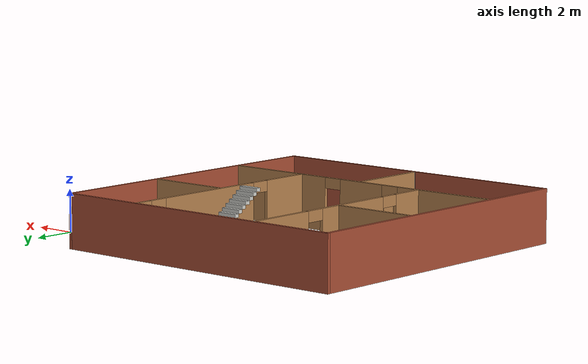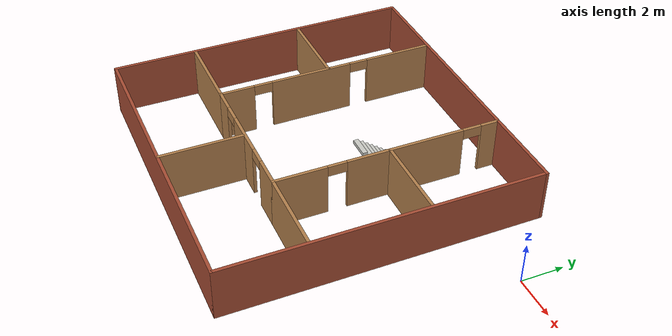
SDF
<?xml version='1.0'?>
<sdf version='1.6'>
  <model name='my_building'>
    <pose>-8.98206 -4.61363 0 0 -0 0</pose>
    <link name='Stairs_0'>
      <visual name='Stairs_0_Visual_0'>
        <pose>1.21745 4.206 0.083333 0 -0 0</pose>
        <geometry>
          <box>
            <size>1 0.233333 0.166667</size>
          </box>
        </geometry>
        <material>
          <script>
            <uri>file://media/materials/scripts/gazebo.material</uri>
            <name>Gazebo/CeilingTiled</name>
          </script>
          <ambient>1 1 1 1</ambient>
        </material>
        <meta>
          <layer>0</layer>
        </meta>
      </visual>
      <collision name='Stairs_0_Collision_0'>
        <geometry>
          <box>
            <size>1 0.233333 0.166667</size>
          </box>
        </geometry>
        <pose>1.21745 4.206 0.083333 0 -0 0</pose>
      </collision>
      <visual name='Stairs_0_Visual_1'>
        <pose>1.21745 3.97267 0.25 0 -0 0</pose>
        <geometry>
          <box>
            <size>1 0.233333 0.166667</size>
          </box>
        </geometry>
        <material>
          <script>
            <uri>file://media/materials/scripts/gazebo.material</uri>
            <name>Gazebo/CeilingTiled</name>
          </script>
          <ambient>1 1 1 1</ambient>
        </material>
        <meta>
          <layer>0</layer>
        </meta>
      </visual>
      <collision name='Stairs_0_Collision_1'>
        <geometry>
          <box>
            <size>1 0.233333 0.166667</size>
          </box>
        </geometry>
        <pose>1.21745 3.97267 0.25 0 -0 0</pose>
      </collision>
      <visual name='Stairs_0_Visual_2'>
        <pose>1.21745 3.73934 0.416667 0 -0 0</pose>
        <geometry>
          <box>
            <size>1 0.233333 0.166667</size>
          </box>
        </geometry>
        <material>
          <script>
            <uri>file://media/materials/scripts/gazebo.material</uri>
            <name>Gazebo/CeilingTiled</name>
          </script>
          <ambient>1 1 1 1</ambient>
        </material>
        <meta>
          <layer>0</layer>
        </meta>
      </visual>
      <collision name='Stairs_0_Collision_2'>
        <geometry>
          <box>
            <size>1 0.233333 0.166667</size>
          </box>
        </geometry>
        <pose>1.21745 3.73934 0.416667 0 -0 0</pose>
      </collision>
      <visual name='Stairs_0_Visual_3'>
        <pose>1.21745 3.506 0.583333 0 -0 0</pose>
        <geometry>
          <box>
            <size>1 0.233333 0.166667</size>
          </box>
        </geometry>
        <material>
          <script>
            <uri>file://media/materials/scripts/gazebo.material</uri>
            <name>Gazebo/CeilingTiled</name>
          </script>
          <ambient>1 1 1 1</ambient>
        </material>
        <meta>
          <layer>0</layer>
        </meta>
      </visual>
      <collision name='Stairs_0_Collision_3'>
        <geometry>
          <box>
            <size>1 0.233333 0.166667</size>
          </box>
        </geometry>
        <pose>1.21745 3.506 0.583333 0 -0 0</pose>
      </collision>
      <visual name='Stairs_0_Visual_4'>
        <pose>1.21745 3.27267 0.75 0 -0 0</pose>
        <geometry>
          <box>
            <size>1 0.233333 0.166667</size>
          </box>
        </geometry>
        <material>
          <script>
            <uri>file://media/materials/scripts/gazebo.material</uri>
            <name>Gazebo/CeilingTiled</name>
          </script>
          <ambient>1 1 1 1</ambient>
        </material>
        <meta>
          <layer>0</layer>
        </meta>
      </visual>
      <collision name='Stairs_0_Collision_4'>
        <geometry>
          <box>
            <size>1 0.233333 0.166667</size>
          </box>
        </geometry>
        <pose>1.21745 3.27267 0.75 0 -0 0</pose>
      </collision>
      <visual name='Stairs_0_Visual_5'>
        <pose>1.21745 3.03934 0.916667 0 -0 0</pose>
        <geometry>
          <box>
            <size>1 0.233333 0.166667</size>
          </box>
        </geometry>
        <material>
          <script>
            <uri>file://media/materials/scripts/gazebo.material</uri>
            <name>Gazebo/CeilingTiled</name>
          </script>
          <ambient>1 1 1 1</ambient>
        </material>
        <meta>
          <layer>0</layer>
        </meta>
      </visual>
      <collision name='Stairs_0_Collision_5'>
        <geometry>
          <box>
            <size>1 0.233333 0.166667</size>
          </box>
        </geometry>
        <pose>1.21745 3.03934 0.916667 0 -0 0</pose>
      </collision>
      <visual name='Stairs_0_Visual_6'>
        <pose>1.21745 2.806 1.08333 0 -0 0</pose>
        <geometry>
          <box>
            <size>1 0.233333 0.166667</size>
          </box>
        </geometry>
        <material>
          <script>
            <uri>file://media/materials/scripts/gazebo.material</uri>
            <name>Gazebo/CeilingTiled</name>
          </script>
          <ambient>1 1 1 1</ambient>
        </material>
        <meta>
          <layer>0</layer>
        </meta>
      </visual>
      <collision name='Stairs_0_Collision_6'>
        <geometry>
          <box>
            <size>1 0.233333 0.166667</size>
          </box>
        </geometry>
        <pose>1.21745 2.806 1.08333 0 -0 0</pose>
      </collision>
      <visual name='Stairs_0_Visual_7'>
        <pose>1.21745 2.57267 1.25 0 -0 0</pose>
        <geometry>
          <box>
            <size>1 0.233333 0.166667</size>
          </box>
        </geometry>
        <material>
          <script>
            <uri>file://media/materials/scripts/gazebo.material</uri>
            <name>Gazebo/CeilingTiled</name>
          </script>
          <ambient>1 1 1 1</ambient>
        </material>
        <meta>
          <layer>0</layer>
        </meta>
      </visual>
      <collision name='Stairs_0_Collision_7'>
        <geometry>
          <box>
            <size>1 0.233333 0.166667</size>
          </box>
        </geometry>
        <pose>1.21745 2.57267 1.25 0 -0 0</pose>
      </collision>
      <visual name='Stairs_0_Visual_8'>
        <pose>1.21745 2.33934 1.41667 0 -0 0</pose>
        <geometry>
          <box>
            <size>1 0.233333 0.166667</size>
          </box>
        </geometry>
        <material>
          <script>
            <uri>file://media/materials/scripts/gazebo.material</uri>
            <name>Gazebo/CeilingTiled</name>
          </script>
          <ambient>1 1 1 1</ambient>
        </material>
        <meta>
          <layer>0</layer>
        </meta>
      </visual>
      <collision name='Stairs_0_Collision_8'>
        <geometry>
          <box>
            <size>1 0.233333 0.166667</size>
          </box>
        </geometry>
        <pose>1.21745 2.33934 1.41667 0 -0 0</pose>
      </collision>
      <visual name='Stairs_0_Visual_9'>
        <pose>1.21745 2.106 1.58333 0 -0 0</pose>
        <geometry>
          <box>
            <size>1 0.233333 0.166667</size>
          </box>
        </geometry>
        <material>
          <script>
            <uri>file://media/materials/scripts/gazebo.material</uri>
            <name>Gazebo/CeilingTiled</name>
          </script>
          <ambient>1 1 1 1</ambient>
        </material>
        <meta>
          <layer>0</layer>
        </meta>
      </visual>
      <collision name='Stairs_0_Collision_9'>
        <geometry>
          <box>
            <size>1 0.233333 0.166667</size>
          </box>
        </geometry>
        <pose>1.21745 2.106 1.58333 0 -0 0</pose>
      </collision>
      <visual name='Stairs_0_Visual_10'>
        <pose>1.21745 1.87267 1.75 0 -0 0</pose>
        <geometry>
          <box>
            <size>1 0.233333 0.166667</size>
          </box>
        </geometry>
        <material>
          <script>
            <uri>file://media/materials/scripts/gazebo.material</uri>
            <name>Gazebo/CeilingTiled</name>
          </script>
          <ambient>1 1 1 1</ambient>
        </material>
        <meta>
          <layer>0</layer>
        </meta>
      </visual>
      <collision name='Stairs_0_Collision_10'>
        <geometry>
          <box>
            <size>1 0.233333 0.166667</size>
          </box>
        </geometry>
        <pose>1.21745 1.87267 1.75 0 -0 0</pose>
      </collision>
      <visual name='Stairs_0_Visual_11'>
        <pose>1.21745 1.63934 1.91667 0 -0 0</pose>
        <geometry>
          <box>
            <size>1 0.233333 0.166667</size>
          </box>
        </geometry>
        <material>
          <script>
            <uri>file://media/materials/scripts/gazebo.material</uri>
            <name>Gazebo/CeilingTiled</name>
          </script>
          <ambient>1 1 1 1</ambient>
        </material>
        <meta>
          <layer>0</layer>
        </meta>
      </visual>
      <collision name='Stairs_0_Collision_11'>
        <geometry>
          <box>
            <size>1 0.233333 0.166667</size>
          </box>
        </geometry>
        <pose>1.21745 1.63934 1.91667 0 -0 0</pose>
      </collision>
      <visual name='Stairs_0_Visual_12'>
        <pose>1.21745 1.406 2.08333 0 -0 0</pose>
        <geometry>
          <box>
            <size>1 0.233333 0.166667</size>
          </box>
        </geometry>
        <material>
          <script>
            <uri>file://media/materials/scripts/gazebo.material</uri>
            <name>Gazebo/CeilingTiled</name>
          </script>
          <ambient>1 1 1 1</ambient>
        </material>
        <meta>
          <layer>0</layer>
        </meta>
      </visual>
      <collision name='Stairs_0_Collision_12'>
        <geometry>
          <box>
            <size>1 0.233333 0.166667</size>
          </box>
        </geometry>
        <pose>1.21745 1.406 2.08333 0 -0 0</pose>
      </collision>
      <visual name='Stairs_0_Visual_13'>
        <pose>1.21745 1.17267 2.25 0 -0 0</pose>
        <geometry>
          <box>
            <size>1 0.233333 0.166667</size>
          </box>
        </geometry>
        <material>
          <script>
            <uri>file://media/materials/scripts/gazebo.material</uri>
            <name>Gazebo/CeilingTiled</name>
          </script>
          <ambient>1 1 1 1</ambient>
        </material>
        <meta>
          <layer>0</layer>
        </meta>
      </visual>
      <collision name='Stairs_0_Collision_13'>
        <geometry>
          <box>
            <size>1 0.233333 0.166667</size>
          </box>
        </geometry>
        <pose>1.21745 1.17267 2.25 0 -0 0</pose>
      </collision>
      <visual name='Stairs_0_Visual_14'>
        <pose>1.21745 0.939336 2.41667 0 -0 0</pose>
        <geometry>
          <box>
            <size>1 0.233333 0.166667</size>
          </box>
        </geometry>
        <material>
          <script>
            <uri>file://media/materials/scripts/gazebo.material</uri>
            <name>Gazebo/CeilingTiled</name>
          </script>
          <ambient>1 1 1 1</ambient>
        </material>
        <meta>
          <layer>0</layer>
        </meta>
      </visual>
      <collision name='Stairs_0_Collision_14'>
        <geometry>
          <box>
            <size>1 0.233333 0.166667</size>
          </box>
        </geometry>
        <pose>1.21745 0.939336 2.41667 0 -0 0</pose>
      </collision>
    </link>
    <link name='Wall_11'>
      <pose>-4.90694 1.96963 0 0 -0 -1.5708</pose>
      <visual name='Wall_11_Visual_0'>
        <pose>-3.78451 0 1.25 0 -0 0</pose>
        <geometry>
          <box>
            <size>3.37099 0.15 2.5</size>
          </box>
        </geometry>
        <material>
          <script>
            <uri>file://media/materials/scripts/gazebo.material</uri>
            <name>Gazebo/Wood</name>
          </script>
          <ambient>1 1 1 1</ambient>
        </material>
        <meta>
          <layer>0</layer>
        </meta>
      </visual>
      <collision name='Wall_11_Collision_0'>
        <geometry>
          <box>
            <size>3.37099 0.15 2.5</size>
          </box>
        </geometry>
        <pose>-3.78451 0 1.25 0 -0 0</pose>
      </collision>
      <visual name='Wall_11_Visual_1'>
        <pose>0.822358 0 1.25 0 -0 0</pose>
        <geometry>
          <box>
            <size>4.04274 0.15 2.5</size>
          </box>
        </geometry>
        <material>
          <script>
            <uri>file://media/materials/scripts/gazebo.material</uri>
            <name>Gazebo/Wood</name>
          </script>
          <ambient>1 1 1 1</ambient>
        </material>
        <meta>
          <layer>0</layer>
        </meta>
      </visual>
      <collision name='Wall_11_Collision_1'>
        <geometry>
          <box>
            <size>4.04274 0.15 2.5</size>
          </box>
        </geometry>
        <pose>0.822358 0 1.25 0 -0 0</pose>
      </collision>
      <visual name='Wall_11_Visual_2'>
        <pose>4.60686 0 1.25 0 -0 0</pose>
        <geometry>
          <box>
            <size>1.72627 0.15 2.5</size>
          </box>
        </geometry>
        <material>
          <script>
            <uri>file://media/materials/scripts/gazebo.material</uri>
            <name>Gazebo/Wood</name>
          </script>
          <ambient>1 1 1 1</ambient>
        </material>
        <meta>
          <layer>0</layer>
        </meta>
      </visual>
      <collision name='Wall_11_Collision_2'>
        <geometry>
          <box>
            <size>1.72627 0.15 2.5</size>
          </box>
        </geometry>
        <pose>4.60686 0 1.25 0 -0 0</pose>
      </collision>
      <visual name='Wall_11_Visual_3'>
        <pose>-1.64901 0 2.25 0 -0 0</pose>
        <geometry>
          <box>
            <size>0.9 0.15 0.5</size>
          </box>
        </geometry>
        <material>
          <script>
            <uri>file://media/materials/scripts/gazebo.material</uri>
            <name>Gazebo/Wood</name>
          </script>
          <ambient>1 1 1 1</ambient>
        </material>
        <meta>
          <layer>0</layer>
        </meta>
      </visual>
      <collision name='Wall_11_Collision_3'>
        <geometry>
          <box>
            <size>0.9 0.15 0.5</size>
          </box>
        </geometry>
        <pose>-1.64901 0 2.25 0 -0 0</pose>
      </collision>
      <visual name='Wall_11_Visual_4'>
        <pose>3.29373 0 2.25 0 -0 0</pose>
        <geometry>
          <box>
            <size>0.9 0.15 0.5</size>
          </box>
        </geometry>
        <material>
          <script>
            <uri>file://media/materials/scripts/gazebo.material</uri>
            <name>Gazebo/Wood</name>
          </script>
          <ambient>1 1 1 1</ambient>
        </material>
        <meta>
          <layer>0</layer>
        </meta>
      </visual>
      <collision name='Wall_11_Collision_4'>
        <geometry>
          <box>
            <size>0.9 0.15 0.5</size>
          </box>
        </geometry>
        <pose>3.29373 0 2.25 0 -0 0</pose>
      </collision>
    </link>
    <link name='Wall_12'>
      <pose>-1.48194 -3.42537 0 0 -0 0</pose>
      <visual name='Wall_12_Visual_0'>
        <pose>-2.89158 0 1.25 0 -0 0</pose>
        <geometry>
          <box>
            <size>1.21684 0.15 2.5</size>
          </box>
        </geometry>
        <material>
          <script>
            <uri>file://media/materials/scripts/gazebo.material</uri>
            <name>Gazebo/Wood</name>
          </script>
          <ambient>1 1 1 1</ambient>
        </material>
        <meta>
          <layer>0</layer>
        </meta>
      </visual>
      <collision name='Wall_12_Collision_0'>
        <geometry>
          <box>
            <size>1.21684 0.15 2.5</size>
          </box>
        </geometry>
        <pose>-2.89158 0 1.25 0 -0 0</pose>
      </collision>
      <visual name='Wall_12_Visual_1'>
        <pose>-0.161658 0 1.25 0 -0 0</pose>
        <geometry>
          <box>
            <size>2.44301 0.15 2.5</size>
          </box>
        </geometry>
        <material>
          <script>
            <uri>file://media/materials/scripts/gazebo.material</uri>
            <name>Gazebo/Wood</name>
          </script>
          <ambient>1 1 1 1</ambient>
        </material>
        <meta>
          <layer>0</layer>
        </meta>
      </visual>
      <collision name='Wall_12_Collision_1'>
        <geometry>
          <box>
            <size>2.44301 0.15 2.5</size>
          </box>
        </geometry>
        <pose>-0.161658 0 1.25 0 -0 0</pose>
      </collision>
      <visual name='Wall_12_Visual_2'>
        <pose>2.72993 0 1.25 0 -0 0</pose>
        <geometry>
          <box>
            <size>1.54015 0.15 2.5</size>
          </box>
        </geometry>
        <material>
          <script>
            <uri>file://media/materials/scripts/gazebo.material</uri>
            <name>Gazebo/Wood</name>
          </script>
          <ambient>1 1 1 1</ambient>
        </material>
        <meta>
          <layer>0</layer>
        </meta>
      </visual>
      <collision name='Wall_12_Collision_2'>
        <geometry>
          <box>
            <size>1.54015 0.15 2.5</size>
          </box>
        </geometry>
        <pose>2.72993 0 1.25 0 -0 0</pose>
      </collision>
      <visual name='Wall_12_Visual_3'>
        <pose>-1.83316 0 2.25 0 -0 0</pose>
        <geometry>
          <box>
            <size>0.9 0.15 0.5</size>
          </box>
        </geometry>
        <material>
          <script>
            <uri>file://media/materials/scripts/gazebo.material</uri>
            <name>Gazebo/Wood</name>
          </script>
          <ambient>1 1 1 1</ambient>
        </material>
        <meta>
          <layer>0</layer>
        </meta>
      </visual>
      <collision name='Wall_12_Collision_3'>
        <geometry>
          <box>
            <size>0.9 0.15 0.5</size>
          </box>
        </geometry>
        <pose>-1.83316 0 2.25 0 -0 0</pose>
      </collision>
      <visual name='Wall_12_Visual_4'>
        <pose>1.50985 0 2.25 0 -0 0</pose>
        <geometry>
          <box>
            <size>0.9 0.15 0.5</size>
          </box>
        </geometry>
        <material>
          <script>
            <uri>file://media/materials/scripts/gazebo.material</uri>
            <name>Gazebo/Wood</name>
          </script>
          <ambient>1 1 1 1</ambient>
        </material>
        <meta>
          <layer>0</layer>
        </meta>
      </visual>
      <collision name='Wall_12_Collision_4'>
        <geometry>
          <box>
            <size>0.9 0.15 0.5</size>
          </box>
        </geometry>
        <pose>1.50985 0 2.25 0 -0 0</pose>
      </collision>
    </link>
    <link name='Wall_13'>
      <pose>1.94306 1.96963 0 0 -0 1.5708</pose>
      <visual name='Wall_13_Visual_0'>
        <pose>-4.18642 0 1.25 0 -0 0</pose>
        <geometry>
          <box>
            <size>2.56715 0.15 2.5</size>
          </box>
        </geometry>
        <material>
          <script>
            <uri>file://media/materials/scripts/gazebo.material</uri>
            <name>Gazebo/Wood</name>
          </script>
          <ambient>1 1 1 1</ambient>
        </material>
        <meta>
          <layer>0</layer>
        </meta>
      </visual>
      <collision name='Wall_13_Collision_0'>
        <geometry>
          <box>
            <size>2.56715 0.15 2.5</size>
          </box>
        </geometry>
        <pose>-4.18642 0 1.25 0 -0 0</pose>
      </collision>
      <visual name='Wall_13_Visual_1'>
        <pose>0.82864 0 1.25 0 -0 0</pose>
        <geometry>
          <box>
            <size>5.66297 0.15 2.5</size>
          </box>
        </geometry>
        <material>
          <script>
            <uri>file://media/materials/scripts/gazebo.material</uri>
            <name>Gazebo/Wood</name>
          </script>
          <ambient>1 1 1 1</ambient>
        </material>
        <meta>
          <layer>0</layer>
        </meta>
      </visual>
      <collision name='Wall_13_Collision_1'>
        <geometry>
          <box>
            <size>5.66297 0.15 2.5</size>
          </box>
        </geometry>
        <pose>0.82864 0 1.25 0 -0 0</pose>
      </collision>
      <visual name='Wall_13_Visual_2'>
        <pose>5.01506 0 1.25 0 -0 0</pose>
        <geometry>
          <box>
            <size>0.909873 0.15 2.5</size>
          </box>
        </geometry>
        <material>
          <script>
            <uri>file://media/materials/scripts/gazebo.material</uri>
            <name>Gazebo/Wood</name>
          </script>
          <ambient>1 1 1 1</ambient>
        </material>
        <meta>
          <layer>0</layer>
        </meta>
      </visual>
      <collision name='Wall_13_Collision_2'>
        <geometry>
          <box>
            <size>0.909873 0.15 2.5</size>
          </box>
        </geometry>
        <pose>5.01506 0 1.25 0 -0 0</pose>
      </collision>
      <visual name='Wall_13_Visual_3'>
        <pose>-2.45285 0 2.25 0 -0 0</pose>
        <geometry>
          <box>
            <size>0.9 0.15 0.5</size>
          </box>
        </geometry>
        <material>
          <script>
            <uri>file://media/materials/scripts/gazebo.material</uri>
            <name>Gazebo/Wood</name>
          </script>
          <ambient>1 1 1 1</ambient>
        </material>
        <meta>
          <layer>0</layer>
        </meta>
      </visual>
      <collision name='Wall_13_Collision_3'>
        <geometry>
          <box>
            <size>0.9 0.15 0.5</size>
          </box>
        </geometry>
        <pose>-2.45285 0 2.25 0 -0 0</pose>
      </collision>
      <visual name='Wall_13_Visual_4'>
        <pose>4.11013 0 2.25 0 -0 0</pose>
        <geometry>
          <box>
            <size>0.9 0.15 0.5</size>
          </box>
        </geometry>
        <material>
          <script>
            <uri>file://media/materials/scripts/gazebo.material</uri>
            <name>Gazebo/Wood</name>
          </script>
          <ambient>1 1 1 1</ambient>
        </material>
        <meta>
          <layer>0</layer>
        </meta>
      </visual>
      <collision name='Wall_13_Collision_4'>
        <geometry>
          <box>
            <size>0.9 0.15 0.5</size>
          </box>
        </geometry>
        <pose>4.11013 0 2.25 0 -0 0</pose>
      </collision>
    </link>
    <link name='Wall_15'>
      <collision name='Wall_15_Collision'>
        <geometry>
          <box>
            <size>4 0.15 2.5</size>
          </box>
        </geometry>
        <pose>0 0 1.25 0 -0 0</pose>
      </collision>
      <visual name='Wall_15_Visual'>
        <pose>0 0 1.25 0 -0 0</pose>
        <geometry>
          <box>
            <size>4 0.15 2.5</size>
          </box>
        </geometry>
        <material>
          <script>
            <uri>file://media/materials/scripts/gazebo.material</uri>
            <name>Gazebo/Wood</name>
          </script>
          <ambient>0.921569 0.807843 0.615686 1</ambient>
        </material>
        <meta>
          <layer>0</layer>
        </meta>
      </visual>
      <pose>-6.84919 2.03204 0 0 -0 3.14159</pose>
    </link>
    <link name='Wall_17'>
      <collision name='Wall_17_Collision'>
        <geometry>
          <box>
            <size>4 0.15 2.5</size>
          </box>
        </geometry>
        <pose>0 0 1.25 0 -0 0</pose>
      </collision>
      <visual name='Wall_17_Visual'>
        <pose>0 0 1.25 0 -0 0</pose>
        <geometry>
          <box>
            <size>4 0.15 2.5</size>
          </box>
        </geometry>
        <material>
          <script>
            <uri>file://media/materials/scripts/gazebo.material</uri>
            <name>Gazebo/Wood</name>
          </script>
          <ambient>1 1 1 1</ambient>
        </material>
        <meta>
          <layer>0</layer>
        </meta>
      </visual>
      <pose>3.87106 2.03163 0 0 -0 0</pose>
    </link>
    <link name='Wall_19'>
      <collision name='Wall_19_Collision'>
        <geometry>
          <box>
            <size>4 0.15 2.5</size>
          </box>
        </geometry>
        <pose>0 0 1.25 0 -0 0</pose>
      </collision>
      <visual name='Wall_19_Visual'>
        <pose>0 0 1.25 0 -0 0</pose>
        <geometry>
          <box>
            <size>4 0.15 2.5</size>
          </box>
        </geometry>
        <material>
          <script>
            <uri>file://media/materials/scripts/gazebo.material</uri>
            <name>Gazebo/Wood</name>
          </script>
          <ambient>1 1 1 1</ambient>
        </material>
        <meta>
          <layer>0</layer>
        </meta>
      </visual>
      <pose>-6.83194 -3.42537 0 0 -0 3.14159</pose>
    </link>
    <link name='Wall_2'>
      <collision name='Wall_2_Collision'>
        <geometry>
          <box>
            <size>15 0.15 2.5</size>
          </box>
        </geometry>
        <pose>0 0 1.25 0 -0 0</pose>
      </collision>
      <visual name='Wall_2_Visual'>
        <pose>0 0 1.25 0 -0 0</pose>
        <geometry>
          <box>
            <size>15 0.15 2.5</size>
          </box>
        </geometry>
        <material>
          <script>
            <uri>file://media/materials/scripts/gazebo.material</uri>
            <name>Gazebo/Bricks</name>
          </script>
          <ambient>1 1 1 1</ambient>
        </material>
        <meta>
          <layer>0</layer>
        </meta>
      </visual>
      <pose>-8.90706 0 0 0 -0 -1.5708</pose>
    </link>
    <link name='Wall_21'>
      <collision name='Wall_21_Collision'>
        <geometry>
          <box>
            <size>4 0.15 2.5</size>
          </box>
        </geometry>
        <pose>0 0 1.25 0 -0 0</pose>
      </collision>
      <visual name='Wall_21_Visual'>
        <pose>0 0 1.25 0 -0 0</pose>
        <geometry>
          <box>
            <size>4 0.15 2.5</size>
          </box>
        </geometry>
        <material>
          <script>
            <uri>file://media/materials/scripts/gazebo.material</uri>
            <name>Gazebo/Wood</name>
          </script>
          <ambient>1 1 1 1</ambient>
        </material>
        <meta>
          <layer>0</layer>
        </meta>
      </visual>
      <pose>3.86806 -3.42537 0 0 -0 0</pose>
    </link>
    <link name='Wall_23'>
      <collision name='Wall_23_Collision'>
        <geometry>
          <box>
            <size>0.15 0.15 2.5</size>
          </box>
        </geometry>
        <pose>0 0 1.25 0 -0 0</pose>
      </collision>
      <visual name='Wall_23_Visual'>
        <pose>0 0 1.25 0 -0 0</pose>
        <geometry>
          <box>
            <size>0.15 0.15 2.5</size>
          </box>
        </geometry>
        <material>
          <script>
            <uri>file://media/materials/scripts/gazebo.material</uri>
            <name>Gazebo/Grey</name>
          </script>
          <ambient>1 1 1 1</ambient>
        </material>
        <meta>
          <layer>0</layer>
        </meta>
      </visual>
      <pose>-1.53994 -7.38637 0 0 -0 0</pose>
    </link>
    <link name='Wall_25'>
      <collision name='Wall_25_Collision'>
        <geometry>
          <box>
            <size>15 0.15 2.5</size>
          </box>
        </geometry>
        <pose>0 0 1.25 0 -0 0</pose>
      </collision>
      <visual name='Wall_25_Visual'>
        <pose>0 0 1.25 0 -0 0</pose>
        <geometry>
          <box>
            <size>15 0.15 2.5</size>
          </box>
        </geometry>
        <material>
          <script>
            <uri>file://media/materials/scripts/gazebo.material</uri>
            <name>Gazebo/Bricks</name>
          </script>
          <ambient>1 1 1 1</ambient>
        </material>
        <meta>
          <layer>0</layer>
        </meta>
      </visual>
      <pose>-1.48206 -7.425 0 0 -0 0</pose>
    </link>
    <link name='Wall_27'>
      <collision name='Wall_27_Collision'>
        <geometry>
          <box>
            <size>4 0.15 2.5</size>
          </box>
        </geometry>
        <pose>0 0 1.25 0 -0 0</pose>
      </collision>
      <visual name='Wall_27_Visual'>
        <pose>0 0 1.25 0 -0 0</pose>
        <geometry>
          <box>
            <size>4 0.15 2.5</size>
          </box>
        </geometry>
        <material>
          <script>
            <uri>file://media/materials/scripts/gazebo.material</uri>
            <name>Gazebo/Wood</name>
          </script>
          <ambient>1 1 1 1</ambient>
        </material>
        <meta>
          <layer>0</layer>
        </meta>
      </visual>
      <pose>-1.53994 -5.46137 0 0 -0 1.5708</pose>
    </link>
    <link name='Wall_4'>
      <collision name='Wall_4_Collision'>
        <geometry>
          <box>
            <size>15 0.15 2.5</size>
          </box>
        </geometry>
        <pose>0 0 1.25 0 -0 0</pose>
      </collision>
      <visual name='Wall_4_Visual'>
        <pose>0 0 1.25 0 -0 0</pose>
        <geometry>
          <box>
            <size>15 0.15 2.5</size>
          </box>
        </geometry>
        <material>
          <script>
            <uri>file://media/materials/scripts/gazebo.material</uri>
            <name>Gazebo/Bricks</name>
          </script>
          <ambient>1 1 1 1</ambient>
        </material>
        <meta>
          <layer>0</layer>
        </meta>
      </visual>
      <pose>5.94294 0 0 0 -0 1.5708</pose>
    </link>
    <link name='Wall_5'>
      <collision name='Wall_5_Collision'>
        <geometry>
          <box>
            <size>15 0.15 2.5</size>
          </box>
        </geometry>
        <pose>0 0 1.25 0 -0 0</pose>
      </collision>
      <visual name='Wall_5_Visual'>
        <pose>0 0 1.25 0 -0 0</pose>
        <geometry>
          <box>
            <size>15 0.15 2.5</size>
          </box>
        </geometry>
        <material>
          <script>
            <uri>file://media/materials/scripts/gazebo.material</uri>
            <name>Gazebo/Bricks</name>
          </script>
          <ambient>0.921569 0.807843 0.615686 1</ambient>
        </material>
        <meta>
          <layer>0</layer>
        </meta>
      </visual>
      <pose>-1.48206 7.425 0 0 -0 3.14159</pose>
    </link>
    <static>1</static>
  </model>
</sdf>
